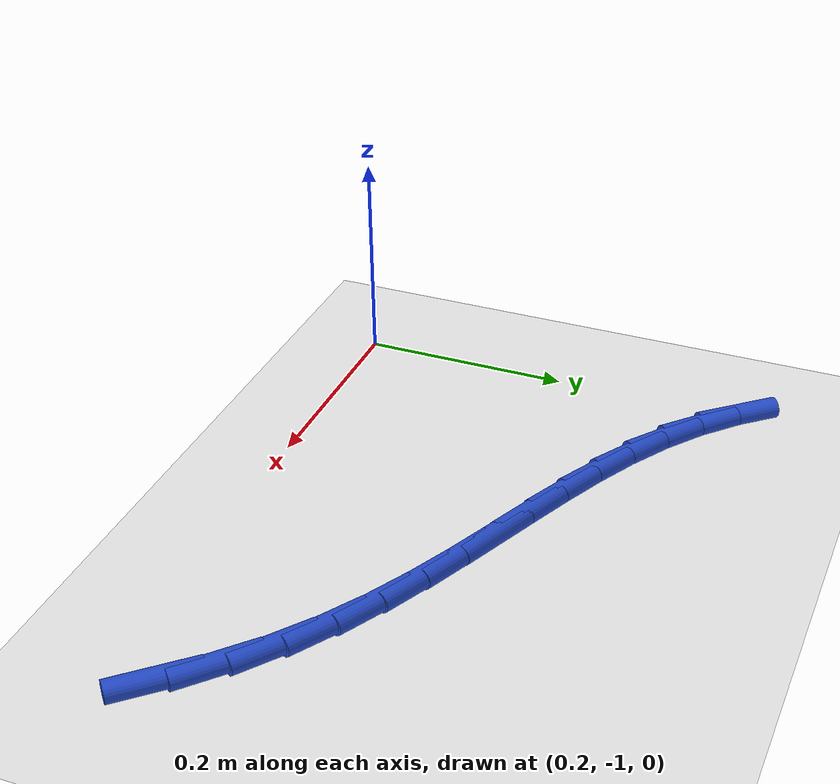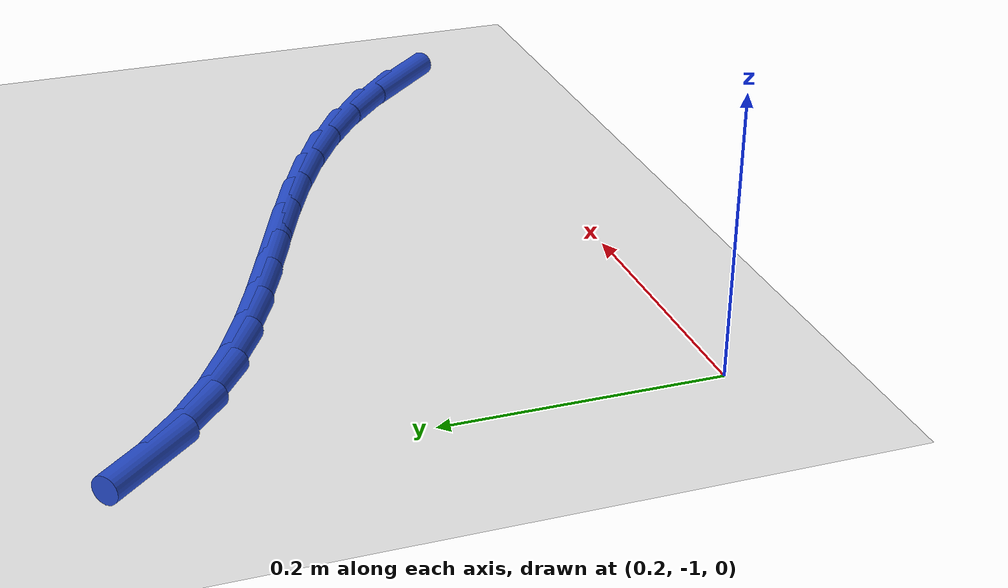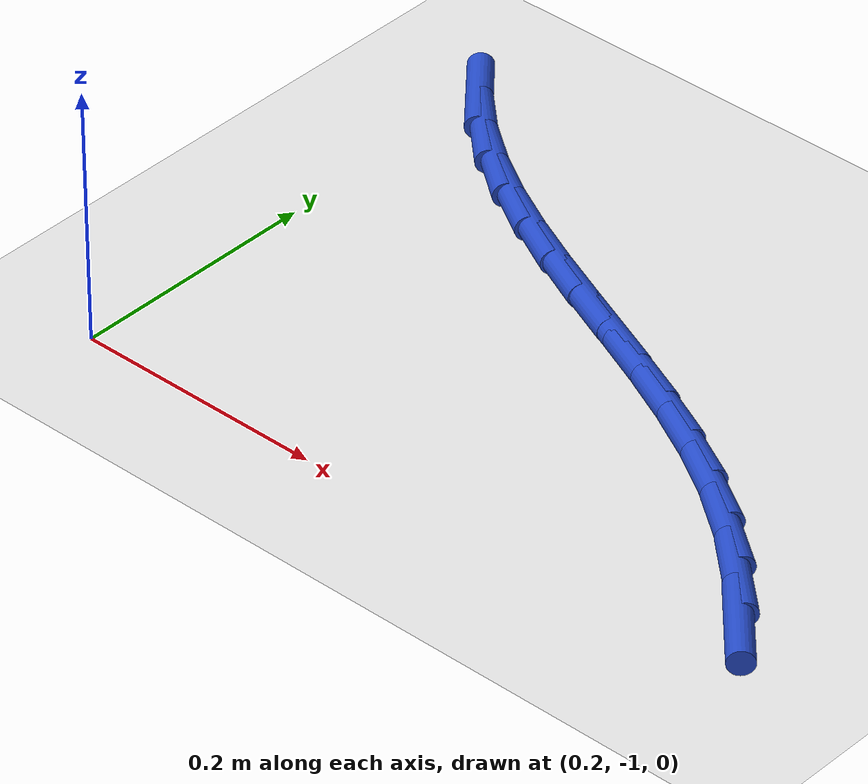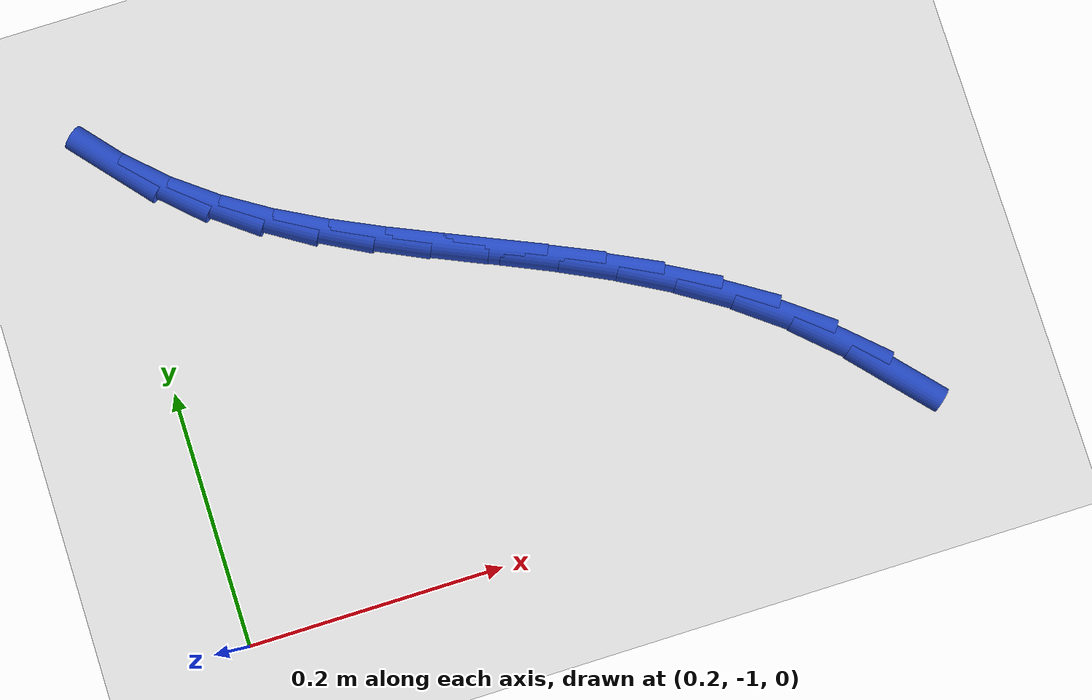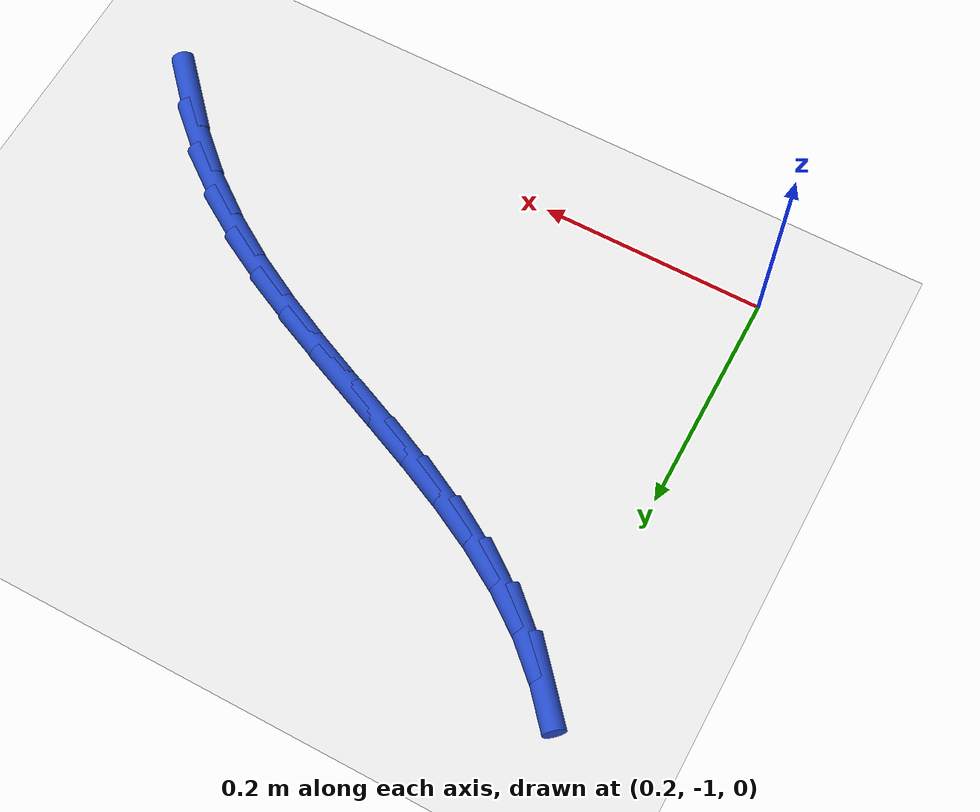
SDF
<sdf version="1.6">
 <world name="default">
  <model name="ground_plane">
   <static>1</static>
   <link name="link">
    <collision name="collision">
     <geometry><plane><normal>0 0 1</normal><size>100 100</size></plane></geometry>
     <surface><friction><ode><mu>100</mu><mu2>50</mu2></ode></friction></surface>
    </collision>
    <visual name="visual">
     <cast_shadows>0</cast_shadows>
     <geometry><plane><normal>0 0 1</normal><size>100 100</size></plane></geometry>
     <material>
      <script><uri>file://media/materials/scripts/gazebo.material</uri><name>Gazebo/WhiteGlow</name></script>
     </material>
    </visual>
   </link>
  </model>
  <model name="line">
   <link name="link_151">
    <pose>0.728202539834332 -0.9491719026033347 0.01 0 1.57 -0.8387693023964465</pose>
    <collision name="collision">
     <geometry><cylinder><radius>0.01</radius><length>0.08</length></cylinder></geometry>
    </collision>
    <visual name="visual">
     <material>
      <script><name>Gazebo/Blue</name><uri>file://media/materials/scripts/gazebo.material</uri></script>
     </material>
     <geometry><cylinder><radius>0.01</radius><length>0.08</length></cylinder></geometry>
    </visual>
   </link>
   <link name="link_152">
    <pose>0.6958216848311041 -0.913136101746281 0.01 0 1.57 -0.7491656632248654</pose>
    <collision name="collision">
     <geometry><cylinder><radius>0.01</radius><length>0.08</length></cylinder></geometry>
    </collision>
    <visual name="visual">
     <material>
      <script><name>Gazebo/Blue</name><uri>file://media/materials/scripts/gazebo.material</uri></script>
     </material>
     <geometry><cylinder><radius>0.01</radius><length>0.08</length></cylinder></geometry>
    </visual>
   </link>
   <link name="link_153">
    <pose>0.6613075633830103 -0.8810366146142539 0.01 0 1.57 -0.6513825485336865</pose>
    <collision name="collision">
     <geometry><cylinder><radius>0.01</radius><length>0.08</length></cylinder></geometry>
    </collision>
    <visual name="visual">
     <material>
      <script><name>Gazebo/Blue</name><uri>file://media/materials/scripts/gazebo.material</uri></script>
     </material>
     <geometry><cylinder><radius>0.01</radius><length>0.08</length></cylinder></geometry>
    </visual>
   </link>
   <link name="link_154">
    <pose>0.6246609504639482 -0.8530976681109361 0.01 0 1.57 -0.5672356165106364</pose>
    <collision name="collision">
     <geometry><cylinder><radius>0.01</radius><length>0.08</length></cylinder></geometry>
    </collision>
    <visual name="visual">
     <material>
      <script><name>Gazebo/Blue</name><uri>file://media/materials/scripts/gazebo.material</uri></script>
     </material>
     <geometry><cylinder><radius>0.01</radius><length>0.08</length></cylinder></geometry>
    </visual>
   </link>
   <link name="link_155">
    <pose>0.5863057568875977 -0.8286625202980451 0.01 0 1.57 -0.5002770801055465</pose>
    <collision name="collision">
     <geometry><cylinder><radius>0.01</radius><length>0.08</length></cylinder></geometry>
    </collision>
    <visual name="visual">
     <material>
      <script><name>Gazebo/Blue</name><uri>file://media/materials/scripts/gazebo.material</uri></script>
     </material>
     <geometry><cylinder><radius>0.01</radius><length>0.08</length></cylinder></geometry>
    </visual>
   </link>
   <link name="link_156">
    <pose>0.5466969086949894 -0.8070098555322206 0.01 0 1.57 -0.4514519892876549</pose>
    <collision name="collision">
     <geometry><cylinder><radius>0.01</radius><length>0.08</length></cylinder></geometry>
    </collision>
    <visual name="visual">
     <material>
      <script><name>Gazebo/Blue</name><uri>file://media/materials/scripts/gazebo.material</uri></script>
     </material>
     <geometry><cylinder><radius>0.01</radius><length>0.08</length></cylinder></geometry>
    </visual>
   </link>
   <link name="link_157">
    <pose>0.5062893319271559 -0.7874183581701039 0.01 0 1.57 -0.4210878551504398</pose>
    <collision name="collision">
     <geometry><cylinder><radius>0.01</radius><length>0.08</length></cylinder></geometry>
    </collision>
    <visual name="visual">
     <material>
      <script><name>Gazebo/Blue</name><uri>file://media/materials/scripts/gazebo.material</uri></script>
     </material>
     <geometry><cylinder><radius>0.01</radius><length>0.08</length></cylinder></geometry>
    </visual>
   </link>
   <link name="link_158">
    <pose>0.46553795262512837 -0.7691667125683352 0.01 0 1.57 -0.40937036798484217</pose>
    <collision name="collision">
     <geometry><cylinder><radius>0.01</radius><length>0.08</length></cylinder></geometry>
    </collision>
    <visual name="visual">
     <material>
      <script><name>Gazebo/Blue</name><uri>file://media/materials/scripts/gazebo.material</uri></script>
     </material>
     <geometry><cylinder><radius>0.01</radius><length>0.08</length></cylinder></geometry>
    </visual>
   </link>
   <link name="link_159">
    <pose>0.42489769682993844 -0.7515336030835554 0.01 0 1.57 -0.4166631490303891</pose>
    <collision name="collision">
     <geometry><cylinder><radius>0.01</radius><length>0.08</length></cylinder></geometry>
    </collision>
    <visual name="visual">
     <material>
      <script><name>Gazebo/Blue</name><uri>file://media/materials/scripts/gazebo.material</uri></script>
     </material>
     <geometry><cylinder><radius>0.01</radius><length>0.08</length></cylinder></geometry>
    </visual>
   </link>
   <link name="link_160">
    <pose>0.38482349058261933 -0.7337977140724056 0.01 0 1.57 -0.44365096385676955</pose>
    <collision name="collision">
     <geometry><cylinder><radius>0.01</radius><length>0.08</length></cylinder></geometry>
    </collision>
    <visual name="visual">
     <material>
      <script><name>Gazebo/Blue</name><uri>file://media/materials/scripts/gazebo.material</uri></script>
     </material>
     <geometry><cylinder><radius>0.01</radius><length>0.08</length></cylinder></geometry>
    </visual>
   </link>
   <link name="link_161">
    <pose>0.34577025992420213 -0.7152377298915262 0.01 0 1.57 -0.49128553605976183</pose>
    <collision name="collision">
     <geometry><cylinder><radius>0.01</radius><length>0.08</length></cylinder></geometry>
    </collision>
    <visual name="visual">
     <material>
      <script><name>Gazebo/Blue</name><uri>file://media/materials/scripts/gazebo.material</uri></script>
     </material>
     <geometry><cylinder><radius>0.01</radius><length>0.08</length></cylinder></geometry>
    </visual>
   </link>
   <link name="link_162">
    <pose>0.30819293089571886 -0.695132334897558 0.01 0 1.57 -0.5604743853234426</pose>
    <collision name="collision">
     <geometry><cylinder><radius>0.01</radius><length>0.08</length></cylinder></geometry>
    </collision>
    <visual name="visual">
     <material>
      <script><name>Gazebo/Blue</name><uri>file://media/materials/scripts/gazebo.material</uri></script>
     </material>
     <geometry><cylinder><radius>0.01</radius><length>0.08</length></cylinder></geometry>
    </visual>
   </link>
   <link name="link_163">
    <pose>0.27254642953820135 -0.672760213447142 0.01 0 1.57 -0.6514312393088032</pose>
    <collision name="collision">
     <geometry><cylinder><radius>0.01</radius><length>0.08</length></cylinder></geometry>
    </collision>
    <visual name="visual">
     <material>
      <script><name>Gazebo/Blue</name><uri>file://media/materials/scripts/gazebo.material</uri></script>
     </material>
     <geometry><cylinder><radius>0.01</radius><length>0.08</length></cylinder></geometry>
    </visual>
   </link>
   <link name="link_164">
    <pose>0.2392856818926814 -0.6474000498969185 0.01 0 1.57 -0.7597110736978885</pose>
    <collision name="collision">
     <geometry><cylinder><radius>0.01</radius><length>0.08</length></cylinder></geometry>
    </collision>
    <visual name="visual">
     <material>
      <script><name>Gazebo/Blue</name><uri>file://media/materials/scripts/gazebo.material</uri></script>
     </material>
     <geometry><cylinder><radius>0.01</radius><length>0.08</length></cylinder></geometry>
    </visual>
   </link>
   <link name="link_165">
    <pose>0.2088031556140662 -0.6184446469319643 0.01 0 1.57 -0.8628512824250716</pose>
    <collision name="collision">
     <geometry><cylinder><radius>0.01</radius><length>0.08</length></cylinder></geometry>
    </collision>
    <visual name="visual">
     <material>
      <script><name>Gazebo/Blue</name><uri>file://media/materials/scripts/gazebo.material</uri></script>
     </material>
     <geometry><cylinder><radius>0.01</radius><length>0.08</length></cylinder></geometry>
    </visual>
   </link>
  </model>
 </world>
</sdf>
